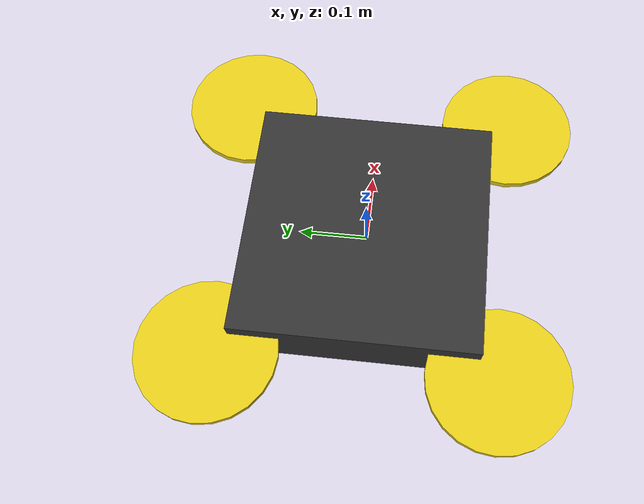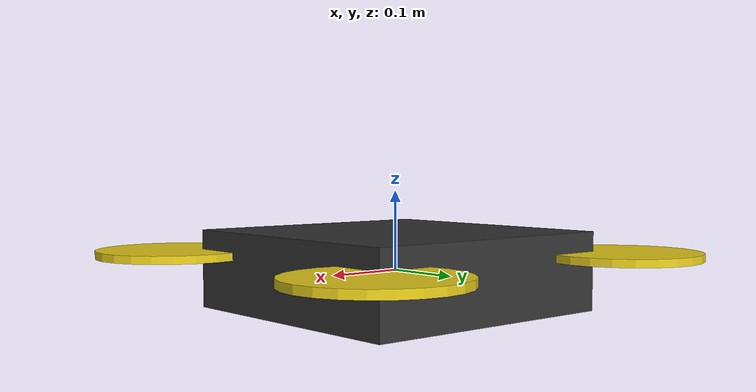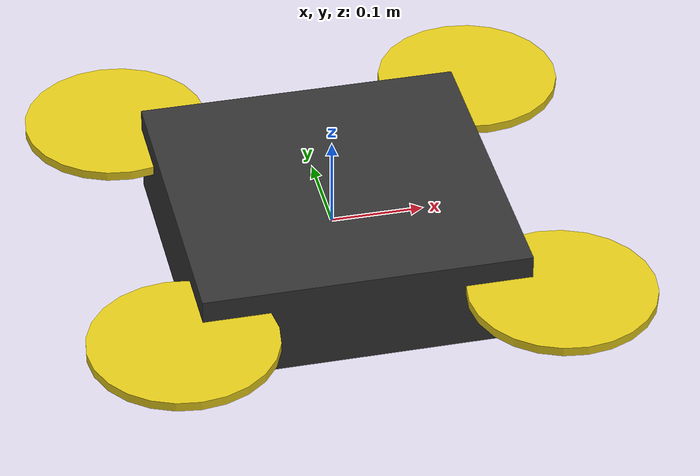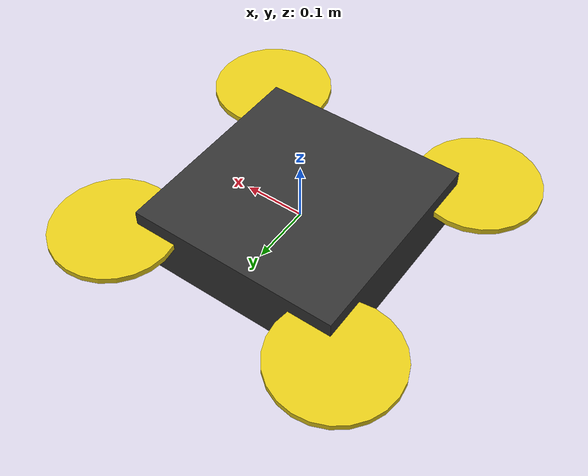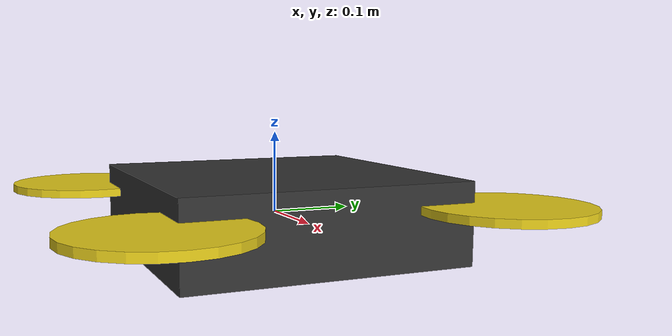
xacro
<?xml version="1.0"?>
<robot name="single_quadrotor" xmlns:xacro="http://www.ros.org/wiki/xacro">

  <xacro:arg name="drone_name" default="drone_1"/>
  <xacro:arg name="x" default="0.0"/>
  <xacro:arg name="y" default="0.0"/>
  <xacro:arg name="z" default="0.2"/>

  <xacro:include filename="$(find drone_description)/urdf/quadrotor_macro.xacro"/>

  <xacro:quadrotor
    drone_name="$(arg drone_name)"
    x="$(arg x)"
    y="$(arg y)"
    z="$(arg z)"/>

</robot>

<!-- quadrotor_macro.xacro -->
<robot xmlns:xacro="http://www.ros.org/wiki/xacro">

  <xacro:macro name="quadrotor" params="drone_name x y z">

    <!-- ============ BODY ============ -->
    <link name="${drone_name}/base_link">
      <visual>
        <geometry><box size="0.35 0.35 0.10"/></geometry>
        <material name="body_grey"><color rgba="0.2 0.2 0.2 1"/></material>
      </visual>
      <collision>
        <geometry><box size="0.35 0.35 0.10"/></geometry>
      </collision>
      <inertial>
        <mass value="1.5"/>
        <inertia ixx="0.0298" ixy="0" ixz="0" iyy="0.0298" iyz="0" izz="0.0552"/>
      </inertial>
    </link>

    <link name="${drone_name}/imu_link">
      <inertial>
        <mass value="0.01"/>
        <inertia ixx="1e-6" ixy="0" ixz="0" iyy="1e-6" iyz="0" izz="1e-6"/>
      </inertial>
    </link>
    <joint name="${drone_name}/imu_joint" type="fixed">
      <parent link="${drone_name}/base_link"/>
      <child link="${drone_name}/imu_link"/>
      <origin xyz="0 0 0" rpy="0 0 0"/>
    </joint>

    <xacro:macro name="rotor" params="suffix xoff yoff spin_dir">
      <link name="${drone_name}/rotor_${suffix}">
        <visual>
          <geometry><cylinder radius="0.10" length="0.01"/></geometry>
          <material name="rotor_yellow"><color rgba="0.9 0.8 0.1 1"/></material>
        </visual>
        <collision>
          <geometry><cylinder radius="0.10" length="0.01"/></geometry>
        </collision>
        <inertial>
          <mass value="0.02"/>
          <inertia ixx="1e-5" ixy="0" ixz="0" iyy="1e-5" iyz="0" izz="2e-5"/>
        </inertial>
      </link>
      <joint name="${drone_name}/rotor_${suffix}_joint" type="continuous">
        <parent link="${drone_name}/base_link"/>
        <child link="${drone_name}/rotor_${suffix}"/>
        <origin xyz="${xoff} ${yoff} 0.02" rpy="0 0 0"/>
        <axis xyz="0 0 1"/>
      </joint>
    </xacro:macro>

    <xacro:rotor suffix="0" xoff="0.20"  yoff="0.20"  spin_dir="1"/>
    <xacro:rotor suffix="1" xoff="0.20"  yoff="-0.20" spin_dir="-1"/>
    <xacro:rotor suffix="2" xoff="-0.20" yoff="-0.20" spin_dir="1"/>
    <xacro:rotor suffix="3" xoff="-0.20" yoff="0.20"  spin_dir="-1"/>

    <xacro:macro name="motor_model_plugin" params="suffix motor_number turning_direction">
      <gazebo>
        <plugin filename="gz-sim-multicopter-motor-model-system"
                name="gz::sim::systems::MulticopterMotorModel">
          <robotNamespace>${drone_name}</robotNamespace>
          <jointName>${drone_name}/rotor_${suffix}_joint</jointName>
          <linkName>${drone_name}/rotor_${suffix}</linkName>
          <turningDirection>${turning_direction}</turningDirection>
          <timeConstantUp>0.0125</timeConstantUp>
          <timeConstantDown>0.025</timeConstantDown>
          <maxRotVelocity>838</maxRotVelocity>
          <motorConstant>8.54858e-06</motorConstant>
          <momentConstant>0.06</momentConstant>
          <commandSubTopic>command/motor_speed</commandSubTopic>
          <motorNumber>${motor_number}</motorNumber>
          <rotorDragCoefficient>8.06428e-05</rotorDragCoefficient>
          <rollingMomentCoefficient>1e-6</rollingMomentCoefficient>
          <rotorVelocitySlowdownSim>10</rotorVelocitySlowdownSim>
          <motorType>velocity</motorType>
        </plugin>
      </gazebo>
    </xacro:macro>

    <xacro:motor_model_plugin suffix="0" motor_number="0" turning_direction="ccw"/>
    <xacro:motor_model_plugin suffix="1" motor_number="1" turning_direction="cw"/>
    <xacro:motor_model_plugin suffix="2" motor_number="2" turning_direction="ccw"/>
    <xacro:motor_model_plugin suffix="3" motor_number="3" turning_direction="cw"/>

    <gazebo reference="${drone_name}/imu_link">
      <sensor name="${drone_name}_imu" type="imu">
        <always_on>true</always_on>
        <update_rate>100</update_rate>
        <topic>${drone_name}/imu</topic>
        <pose>0 0 0 0 0 0</pose>
      </sensor>
    </gazebo>

    <gazebo>
      <plugin filename="gz-sim-odometry-publisher-system"
              name="gz::sim::systems::OdometryPublisher">
        <odom_frame>${drone_name}/odom</odom_frame>
        <robot_base_frame>${drone_name}/base_link</robot_base_frame>
        <odom_topic>${drone_name}/odom</odom_topic>
        <odom_publish_frequency>50</odom_publish_frequency>
        <dimensions>3</dimensions>
      </plugin>
    </gazebo>

  </xacro:macro>
</robot>
